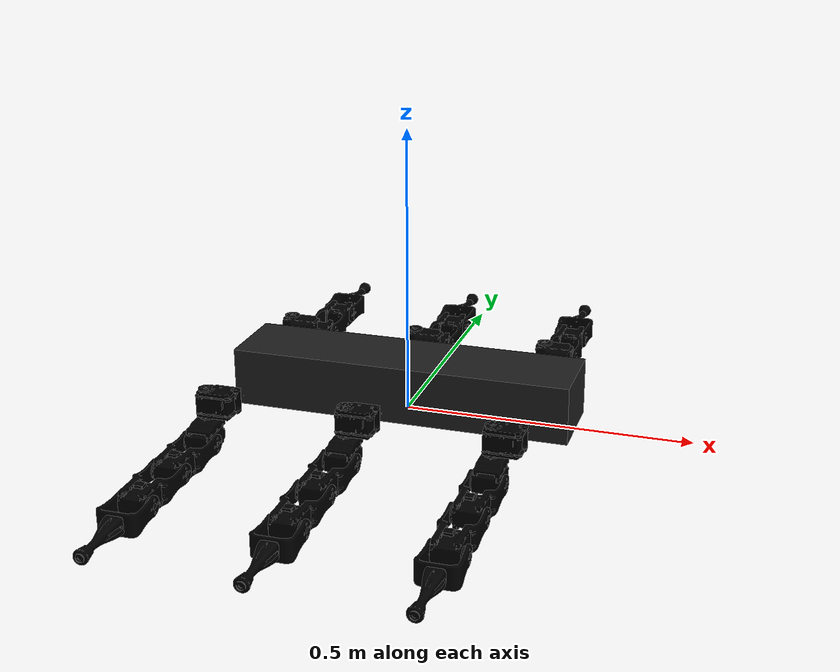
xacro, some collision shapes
<?xml version="1.0"?>
<!-- Copyright (c) 2020 -->
<!-- Commonwealth Scientific and Industrial Research Organisation (CSIRO) -->
<!-- ABN 41 687 119 230 -->

<robot name="bullet_model"
	xmlns:xacro="http://www.ros.org/wiki/xacro">

	<gazebo>
		<plugin name="gazebo_ros_control" filename="libgazebo_ros_control.so">
		</plugin>

		<plugin name="imu_plugin" filename="libgazebo_ros_imu.so">
			<alwaysOn>true</alwaysOn>
			<bodyName>base_link</bodyName>
			<topicName>imu/data</topicName>
			<serviceName>imu_service</serviceName>
			<gaussianNoise>0.0</gaussianNoise>
			<updateRate>20.0</updateRate>
		</plugin>

	</gazebo>

	<gazebo reference="base_link">
		<material>Gazebo/Black</material>
		<selfCollide>True</selfCollide>
		<gravity>True</gravity>
	</gazebo>

	<xacro:include filename="$(find bullet_syropod)/robot/macros.xacro" />

	<!-- model dimentions and parameters -->

	<xacro:property name="BodyLength" value="0.6" />
	<!-- along x axis -->
	<xacro:property name="BodyWidth" value="0.14" />
	<!-- along y axis -->
	<xacro:property name="BodyHeight" value="0.101" />
	<!-- along z axis -->
	<xacro:property name="BodyMass" value="6.0" />
	<xacro:property name="BodyLengthOffset" value="0.05" />

	<!-- base_motor link -->
	<xacro:property name="basemwidth" value="0.04" />
	<xacro:property name="basemlength" value="0.075" />
	<xacro:property name="basemheight" value="0.046" />
	<xacro:property name="basemmass" value="0.2" />

	<xacro:property name="basem_d" value="0.023" />
	<xacro:property name="basem_yaw" value="1.5708" />
	<xacro:property name="basem_pitch" value="0.0" />
	<xacro:property name="basem_roll" value="0.0" />

	<!-- coxa link -->
	<xacro:property name="coxawidth" value="0.06" />
	<xacro:property name="coxalength" value="0.046" />
	<xacro:property name="coxaheight" value="0.04" />
	<xacro:property name="coxamass" value="0.2" />

	<xacro:property name="coxa_d" value="-0.0183" />
	<xacro:property name="coxa_yaw" value="0.0" />
	<xacro:property name="coxa_pitch" value="1.5708" />
	<xacro:property name="coxa_roll" value="0.0" />

	<xacro:property name="coxaupperlimit" value="2.4" />
	<xacro:property name="coxalowerlimit" value="-2.4" />
	<xacro:property name="coxaeffortlimit" value="8.4" />
	<xacro:property name="coxavelocitylimit" value="2.35619449" />

	<xacro:property name="basemcoxaoffset" value ="-0.0145" />

	<!-- coxa_t link -->
	<xacro:property name="coxatwidth" value="0.06" />
	<xacro:property name="coxatlength" value="0.046" />
	<xacro:property name="coxatheight" value="0.04" />
	<xacro:property name="coxatmass" value="0.2" />

	<xacro:property name="coxat_d" value="0.013" />
	<xacro:property name="coxat_yaw" value="1.5708" />
	<xacro:property name="coxat_pitch" value="-1.5708" />
	<xacro:property name="coxat_roll" value="1.5708" />

	<xacro:property name="coxatupperlimit" value="2.4" />
	<xacro:property name="coxatlowerlimit" value="-2.4" />
	<xacro:property name="coxateffortlimit" value="8.4" />
	<xacro:property name="coxatvelocitylimit" value="2.35619449" />

	<xacro:property name="coxacoxatoffset" value ="-0.02804" />
	<xacro:property name="coxacoxatoffset2" value ="0.0457" />
	<xacro:property name="coxacoxatoffset3" value ="-0.04678" />

	<!-- femur link -->
	<xacro:property name="femurwidth" value="0.04" />
	<xacro:property name="femurlength" value="0.11" />
	<xacro:property name="femurheight" value="0.046" />
	<xacro:property name="femurmass" value="0.4" />

	<xacro:property name="femur_d" value="0.035" />
	<xacro:property name="femur_yaw" value="0" />
	<xacro:property name="femur_pitch" value="0" />
	<xacro:property name="femur_roll" value="1.5708" />

	<xacro:property name="femurupperlimit" value="2.4" />
	<xacro:property name="femurlowerlimit" value="-2.4" />
	<xacro:property name="femureffortlimit" value="8.4" />
	<xacro:property name="femurvelocitylimit" value="2.35619449" />

	<xacro:property name="coxatfemuroffset" value="0.02898" />
	<xacro:property name="coxatfemuroffset2" value="-0.06024" />

	<!-- tibia link -->
	<xacro:property name="tibiawidth" value="0.04" />
	<xacro:property name="tibialength" value="0.11" />
	<xacro:property name="tibiaheight" value="0.046" />
	<xacro:property name="tibiamass" value="0.152" />

	<xacro:property name="tibia_d" value="0" />
	<xacro:property name="tibia_yaw" value="0" />
	<xacro:property name="tibia_pitch" value="0" />
	<xacro:property name="tibia_roll" value="0" />

	<xacro:property name="tibiaupperlimit" value="2.4" />
	<xacro:property name="tibialowerlimit" value="-2.4" />
	<xacro:property name="tibiaeffortlimit" value="8.4" />
	<xacro:property name="tibiavelocitylimit" value="2.35619449" />

	<xacro:property name="femurtibiaoffset" value="0.114" />

	<!-- tarsus link -->
	<xacro:property name="tarsuslength" value="0.16312" />
	<xacro:property name="tarsusradius" value="0.01" />
	<xacro:property name="tarsusmass" value="0.076035" />

	<xacro:property name="tarsus_d" value="0" />
	<xacro:property name="tarsus_yaw" value="0" />
	<xacro:property name="tarsus_pitch" value="0" />
	<xacro:property name="tarsus_roll" value="0" />

	<xacro:property name="tarsusupperlimit" value="2.4" />
	<xacro:property name="tarsuslowerlimit" value="-2.4" />
	<xacro:property name="tarsuseffortlimit" value="8.4" />
	<xacro:property name="tarsusvelocitylimit" value="2.35619449" />

	<xacro:property name="tibiatarsusoffset" value="0.114" />

	<!-- TODO: Set individual static friction values for links instead of default 0.2 -->
	<xacro:property name="defaultmu1" value="200" />
	<xacro:property name="defaultmu2" value="100" />
	<xacro:property name="defaultdamping" value="0.0" />
	<xacro:property name="defaultmu3" value="0.9" />

	<!-- Link description -->

	<link name="dummy_link" />
	<!-- Because kdl parser doesn't accept a root link with inertia -->

	<joint name="base_joint" type="fixed">
		<parent link="dummy_link"/>
		<child link="base_link"/>
	</joint>

	<link name="base_link">
		<visual>
			<geometry>
				<mesh filename="package://bullet_syropod/meshes/Body.STL" />
			</geometry>
			<origin xyz="0 0 ${BodyHeight/2}" rpy="0 0 0"/>
		</visual>
		<collision>
			<geometry>
				<box size="${BodyLength} ${BodyWidth} ${BodyHeight}"/>
			</geometry>
			<origin xyz="0 0 ${BodyHeight/2}" rpy="0 0 0"/>
		</collision>
		<inertial>
			<origin xyz="0 0 ${BodyHeight/2}" rpy="0 0 0"/>
			<mass value="${BodyMass}"/>
			<xacro:box_inertia m="${BodyMass}" x="${BodyLength}" y="${BodyWidth}" z="${BodyHeight}"/>
		</inertial>
	</link>

	<!--Instantiation of legs: A:front, B:middle, C:rear-->
	<xacro:leg prefix="AR" reflect="1" offset="1"/>
	<xacro:leg prefix="AL" reflect="-1" offset="1"/>
	<xacro:leg prefix="BR" reflect="1" offset="0"/>
	<xacro:leg prefix="BL" reflect="-1" offset="0"/>
	<xacro:leg prefix="CR" reflect="1" offset="-1" />
	<xacro:leg prefix="CL" reflect="-1" offset="-1" />

</robot>

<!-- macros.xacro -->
<!-- Copyright (c) 2020 -->
<!-- Commonwealth Scientific and Industrial Research Organisation (CSIRO) -->
<!-- ABN 41 687 119 230 -->

<robot name="bullet_boxmodel"
    xmlns:xacro="http://www.ros.org/wiki/xacro">

    <xacro:macro name="cylinder_inertia" params="m r h">
        <inertia ixx="${m*(3*r*r+h*h)/12}" ixy = "0" ixz = "0" iyy="${m*(3*r*r+h*h)/12}" iyz = "0" izz="${m*r*r/2}" />
    </xacro:macro>

    <xacro:macro name="box_inertia" params="m x y z">
        <inertia ixx="${m*(y*y+z*z)/12}" ixy = "0" ixz = "0" iyy="${m*(x*x+z*z)/12}" iyz = "0" izz="${m*(x*x+z*z)/12}" />
    </xacro:macro>

    <xacro:macro name="sphere_inertia" params="m r">
        <inertia ixx="${2*m*r*r/5}" ixy = "0" ixz = "0" iyy="${2*m*r*r/5}" iyz = "0" izz="${2*m*r*r/5}" />
    </xacro:macro>

    <material name="black">
        <color rgba= "0 0 0 1"/>
    </material>

    <xacro:macro name="leg" params="prefix offset reflect">

        <!-- base_motor link (Base motor visual component is attached to the main body)-->
        <link name="${prefix}_basem_link">
            <visual>
                <geometry>
                    <box size="0.001 0.001 0.001"/>
                </geometry>
                <origin xyz="${basemlength} 0 0" rpy="0 0 ${reflect*basem_yaw}"/>
                <material name="black"/>
            </visual>
            <collision>
                <geometry>
                    <box size="${basemlength} ${basemwidth} ${basemheight}"/>
                </geometry>
                <origin xyz="${basemlength/2} 0 0" rpy="0 0 0"/>
            </collision>
            <inertial>
                <mass value="${basemmass}"/>
                <xacro:box_inertia m="${basemmass}" x="${basemlength}" y="${basemwidth}" z="${basemheight}"/>
            </inertial>
        </link>
        <joint name="${prefix}_basem_joint" type="fixed">
            <parent link="base_link"/>
            <child link="${prefix}_basem_link"/>
            <origin xyz = "${offset*(BodyLength/2-BodyLengthOffset)} ${-reflect*BodyWidth/2} ${BodyHeight/2}" rpy = "${basem_roll} ${basem_pitch} ${-reflect*basem_yaw}"/>
        </joint>

        <!-- coxa link -->
        <link name="${prefix}_coxa_link">
            <visual>
                <geometry>
                    <mesh filename="package://bullet_syropod/meshes/Coxa.STL" />
                </geometry>
                <origin xyz="0 ${reflect*coxa_d} ${coxaheight/4}" rpy="0 0 ${reflect*coxa_pitch}"/>
                <material name="black"/>
            </visual>
            <collision>
                <geometry>
                    <box size="${coxalength} ${coxawidth} ${coxaheight}"/>
                </geometry>
                <origin xyz="0 ${reflect*coxa_d} ${coxaheight/2}" rpy="0 0 0"/>
            </collision>
            <inertial>
                <mass value="${coxamass}"/>
                <xacro:box_inertia m="${coxamass}" x="${coxalength}" y="${coxawidth}" z="${coxaheight}"/>
            </inertial>
        </link>
        <joint name="${prefix}_coxa_joint" type="revolute">
            <limit upper="${coxaupperlimit}" lower="${coxalowerlimit}" velocity="${coxavelocitylimit}" effort="${coxaeffortlimit}"/>
            <axis xyz="0 0 1"/>
            <dynamics damping="${defaultdamping}" friction="${defaultmu3}"/>
            <parent link="${prefix}_basem_link"/>
            <child link="${prefix}_coxa_link"/>
            <origin xyz = "${basemlength} 0 0 " rpy = "${coxa_roll} ${coxa_pitch} ${-offset*reflect*coxa_yaw}"/>
        </joint>
        <transmission name="${prefix}_coxa_tran">
            <type>transmission_interface/SimpleTransmission</type>
            <joint name="${prefix}_coxa_joint">
                <hardwareInterface>hardware_interface/EffortJointInterface</hardwareInterface>
            </joint>
            <actuator name="${prefix}_coxa_motor">
                <hardwareInterface>hardware_interface/EffortJointInterface</hardwareInterface>
                <mechanicalReduction>1</mechanicalReduction>
            </actuator>
        </transmission>

        <!-- coxat link -->
        <link name="${prefix}_coxat_link">
            <visual>
                <geometry>
                    <mesh filename="package://bullet_syropod/meshes/Coxa_t.STL" />
                </geometry>
                <origin xyz="0 0 ${coxacoxatoffset}" rpy="0 0 ${coxat_yaw}"/>
                <material name="black"/>
            </visual>
            <collision>
                <geometry>
                    <box size="${coxatlength} ${coxatwidth} ${coxatheight}"/>
                </geometry>
                <origin xyz="${coxat_d} 0 -${coxatheight}" rpy="0 0 ${coxat_yaw}"/>
            </collision>
            <inertial>
                <mass value="${coxatmass}"/>
                <xacro:box_inertia m="${coxatmass}" x="${coxatlength}" y="${coxatwidth}" z="${coxatheight}"/>
            </inertial>
        </link>
        <joint name="${prefix}_coxat_joint" type="revolute">
            <limit upper="${coxatupperlimit}" lower="${coxatlowerlimit}" velocity="${coxatvelocitylimit}" effort="${coxateffortlimit}"/>
            <axis xyz="0 0 1"/>
            <dynamics damping="${defaultdamping}" friction="${defaultmu3}"/>
            <parent link="${prefix}_coxa_link"/>
            <child link="${prefix}_coxat_link"/>
            <origin xyz = "0 ${reflect*coxacoxatoffset3} ${coxacoxatoffset2}" rpy = "0 ${coxat_pitch} 0"/>
        </joint>
        <transmission name="${prefix}_coxat_tran">
            <type>transmission_interface/SimpleTransmission</type>
            <joint name="${prefix}_coxat_joint">
                <hardwareInterface>hardware_interface/EffortJointInterface</hardwareInterface>
            </joint>
            <actuator name="${prefix}_coxat_motor">
                <hardwareInterface>hardware_interface/EffortJointInterface</hardwareInterface>
                <mechanicalReduction>1</mechanicalReduction>
            </actuator>
        </transmission>

        <!-- femur link -->
        <link name="${prefix}_femur_link">
            <visual>
                <geometry>
                    <mesh filename="package://bullet_syropod/meshes/Femur_tibia.STL" />
                </geometry>
                <origin xyz="0 0 0" rpy="0 0 0"/>
                <material name="black"/>
            </visual>
            <collision>
                <geometry>
                    <mesh filename="package://bullet_syropod/meshes/Femur_tibia.STL" />
                </geometry>
                <origin xyz="0 0 0" rpy="0 0 0"/>
            </collision>
            <inertial>
                <mass value="${femurmass}"/>
                <xacro:box_inertia m="${femurmass}" x="${femurlength}" y="${femurwidth}" z="${femurheight}"/>
            </inertial>
        </link>
        <joint name="${prefix}_femur_joint" type="revolute">
            <limit upper="${femurupperlimit}" lower="${femurlowerlimit}" velocity="${femurvelocitylimit}" effort="${femureffortlimit}"/>
            <axis xyz="0 0 1"/>
            <dynamics damping="${defaultdamping}" friction="${defaultmu3}"/>
            <parent link="${prefix}_coxat_link"/>
            <child link="${prefix}_femur_link"/>
            <origin xyz = "${coxatfemuroffset} 0 ${coxatfemuroffset2}" rpy = "${femur_roll} ${femur_pitch} ${femur_yaw}"/>
        </joint>
        <transmission name="${prefix}_femur_tran">
            <type>transmission_interface/SimpleTransmission</type>
            <joint name="${prefix}_femur_joint">
                <hardwareInterface>hardware_interface/EffortJointInterface</hardwareInterface>
            </joint>
            <actuator name="${prefix}_femur_motor">
                <hardwareInterface>hardware_interface/EffortJointInterface</hardwareInterface>
                <mechanicalReduction>1</mechanicalReduction>
            </actuator>
        </transmission>

        <!-- tibia link -->
        <link name="${prefix}_tibia_link">
            <visual>
                <geometry>
                    <mesh filename="package://bullet_syropod/meshes/Femur_tibia.STL" />
                </geometry>
                <origin xyz="0 0 0" rpy="0 0 0"/>
                <material name="black"/>
            </visual>
            <collision>
                <geometry>
                    <mesh filename="package://bullet_syropod/meshes/Femur_tibia.STL" />
                </geometry>
                <origin xyz="0 0 0" rpy="0 0 0"/>
            </collision>
            <inertial>
                <mass value="${tibiamass}"/>
                <xacro:box_inertia m="${tibiamass}" x="${tibialength}" y="${tibiawidth}" z="${tibiaheight}"/>
            </inertial>
        </link>
        <joint name="${prefix}_tibia_joint" type="revolute">
            <limit upper="${tibiaupperlimit}" lower="${tibialowerlimit}" velocity="${tibiavelocitylimit}" effort="${tibiaeffortlimit}"/>
            <axis xyz="0 0 1"/>
            <dynamics damping="${defaultdamping}" friction="${defaultmu3}"/>
            <parent link="${prefix}_femur_link"/>
            <child link="${prefix}_tibia_link"/>
            <origin xyz = "${femurtibiaoffset} 0 0" rpy = "${tibia_roll} ${tibia_pitch} ${tibia_yaw}"/>
        </joint>
        <transmission name="${prefix}_tibia_tran">
            <type>transmission_interface/SimpleTransmission</type>
            <joint name="${prefix}_tibia_joint">
                <hardwareInterface>hardware_interface/EffortJointInterface</hardwareInterface>
            </joint>
            <actuator name="${prefix}_tibia_motor">
                <hardwareInterface>hardware_interface/EffortJointInterface</hardwareInterface>
                <mechanicalReduction>1</mechanicalReduction>
            </actuator>
        </transmission>

        <!-- tarsus link -->
        <link name="${prefix}_tarsus_link">
            <visual>
                <geometry>
                    <mesh filename="package://bullet_syropod/meshes/Tarsus.STL" />
                </geometry>
                <origin xyz="0 0 0" rpy="0 0 0"/>
                <material name="black"/>
            </visual>
            <collision>
                <geometry>
                    <mesh filename="package://bullet_syropod/meshes/Tarsus.STL" />
                </geometry>
                <origin xyz="0 0 0" rpy="0 0 0"/>
            </collision>
            <inertial>
                <mass value="${tarsusmass}"/>
                <xacro:cylinder_inertia m="${tarsusmass}" h="${tarsuslength}" r="${tarsusradius}"/>
                <origin xyz="${tarsuslength/2} 0 0" rpy="0 -1.5708 0"/>
            </inertial>
        </link>
        <joint name="${prefix}_tarsus_joint" type="revolute">
            <limit upper="${tarsusupperlimit}" lower="${tarsuslowerlimit}" velocity="${tarsusvelocitylimit}" effort="${tarsuseffortlimit}"/>
            <axis xyz="0 0 1"/>
            <dynamics damping="${defaultdamping}" friction="${defaultmu3}"/>
            <parent link="${prefix}_tibia_link"/>
            <child link="${prefix}_tarsus_link"/>
            <origin xyz = "${tibiatarsusoffset} 0 0" rpy = "${tarsus_roll} ${tarsus_pitch} ${tarsus_yaw}"/>
        </joint>
        <transmission name="${prefix}_tarsus_tran">
            <type>transmission_interface/SimpleTransmission</type>
            <joint name="${prefix}_tarsus_joint">
                <hardwareInterface>hardware_interface/EffortJointInterface</hardwareInterface>
            </joint>
            <actuator name="${prefix}_tarsus_motor">
                <hardwareInterface>hardware_interface/EffortJointInterface</hardwareInterface>
                <mechanicalReduction>1</mechanicalReduction>
            </actuator>
        </transmission>

        <!--Gazebo specific tags  -->
        <gazebo reference="${prefix}_basem_link">
            <mu1>${defaultmu1}</mu1>
            <mu2>${defaultmu2}</mu2>
            <material>Gazebo/Black</material>
            <gravity>True</gravity>
        </gazebo>
        <gazebo reference="${prefix}_coxa_link">
            <mu1>${defaultmu1}</mu1>
            <mu2>${defaultmu2}</mu2>
            <material>Gazebo/Black</material>
            <gravity>True</gravity>
        </gazebo>
        <gazebo reference="${prefix}_coxat_link">
            <mu1>${defaultmu1}</mu1>
            <mu2>${defaultmu2}</mu2>
            <kp>1000000.0</kp>
            <kd>400000000.0</kd>
            <material>Gazebo/Black</material>
            <gravity>True</gravity>
        </gazebo>
        <gazebo reference="${prefix}_femur_link">
            <mu1>${defaultmu1}</mu1>
            <mu2>${defaultmu2}</mu2>
            <kp>1000000000.0</kp>
            <kd>400000000.0</kd>
            <material>Gazebo/Black</material>
            <gravity>True</gravity>
        </gazebo>
        <gazebo reference="${prefix}_tibia_link">
            <mu1>${defaultmu1}</mu1>
            <mu2>${defaultmu2}</mu2>
            <kp>1000000000.0</kp>
            <kd>400000000.0</kd>
            <material>Gazebo/Black</material>
            <gravity>True</gravity>
        </gazebo>
        <gazebo reference="${prefix}_tarsus_link">
            <mu1>${defaultmu1}</mu1>
            <mu2>${defaultmu1}</mu2>
            <minDepth>0.005</minDepth>
            <kp>100000000000.0</kp>
            <kd>400000000.0</kd>
            <material>Gazebo/Black</material>
            <gravity>True</gravity>
        </gazebo>

    </xacro:macro>

</robot>
